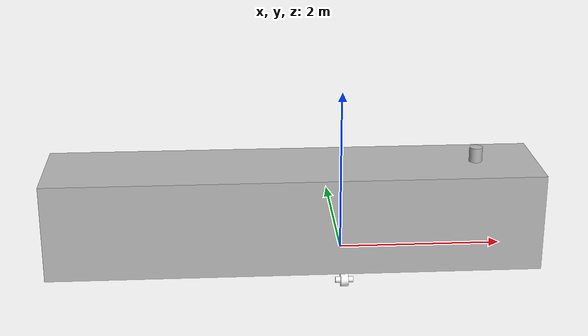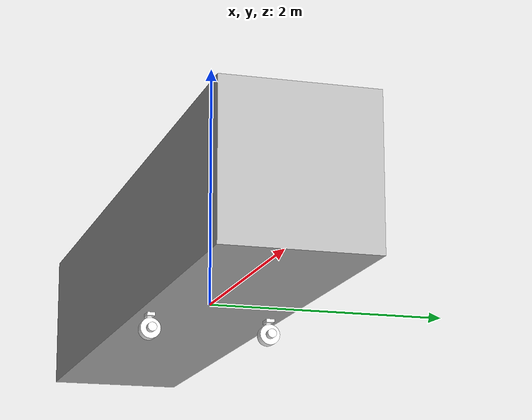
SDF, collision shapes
<?xml version="1.0"?>

<sdf version="1.6">
<!-- Basic model of the 16' WAM-V USV -->
<model name="wamv2">
  <static>false</static>
  <link name="base_link">
    <enable_wind>true</enable_wind>
    <inertial>
      <pose>0 0 -0.6 0 0 0</pose>
      <mass>50</mass>
      <inertia>
        <ixx>120.4</ixx>
        <ixy>0</ixy>
        <ixz>0</ixz>
        <iyy>240.25</iyy>
        <iyz>0</iyz>
        <izz>360.25</izz>
      </inertia>
    </inertial>

    <visual name="visual">
      <pose>-0.45 -10.35 -0.225 0 0 1.570796327</pose>
      <geometry>
        <mesh><uri>meshes/warship.dae</uri><scale>1.5 1.5 1.5</scale></mesh>
      </geometry>
    </visual>

    <collision name="collision">
      <pose>-0.6 0 0.5 0 0 0</pose>
      <geometry>
        <box>
          <size>6 1.2 1.2</size>
        </box>
      </geometry>
    </collision>
  </link>

  <!-- left engine and thruster -->
  <link name="left_housing_link">
    <inertial>
      <pose>0 0.495 -0.225 0 0 0</pose>
      <mass>0.5</mass>
      <inertia>
        <ixx>0.00121745</ixx>
        <ixy>0</ixy>
        <ixz>0</ixz>
        <iyy>0.001445</iyy>
        <iyz>0</iyz>
        <izz>0.00041245</izz>
      </inertia>
    </inertial>
    <visual name="left_housing_visual">
      <pose>0 0.495 -0.225 0 0 0</pose>
      <geometry>
        <mesh>
          <uri>meshes/housing.dae</uri>
        <scale>1.5 1.5 1.5</scale></mesh>
      </geometry>
      <material>
        <diffuse>1 1 1</diffuse>
        <specular>1 1 1</specular>
        <pbr>
          <metal>
            <albedo_map>materials/textures/Thruster_Albedo.png</albedo_map>
            <roughness_map>materials/textures/Thruster_Roughness.png</roughness_map>
          </metal>
        </pbr>
      </material>
    </visual>
    <visual name="left_mount_visual">
      <pose>0 0.495 -0.225 0 0 0</pose>
      <geometry>
        <mesh>
          <uri>meshes/mount.dae</uri>
        <scale>1.5 1.5 1.5</scale></mesh>
      </geometry>
      <material>
        <diffuse>1 1 1</diffuse>
        <specular>1 1 1</specular>
        <pbr>
          <metal>
            <albedo_map>materials/textures/Thruster_Albedo.png</albedo_map>
            <roughness_map>materials/textures/Thruster_Roughness.png</roughness_map>
          </metal>
        </pbr>
      </material>
    </visual>
    <collision name="Box011d">
      <pose>0 0.495 -0.0735735 0 0 0</pose>
      <geometry>
        <box>
          <size>0.12156795 0.06457785 0.1063875</size>
        </box>
      </geometry>
    </collision>
    <collision name="Cylinder264d">
      <pose>0 0.495 -0.1307901 0 0 0</pose>
      <geometry>
        <cylinder>
          <length>0.1884195</length>
          <radius>0.0220545</radius>
        </cylinder>
      </geometry>
    </collision>
    <collision name="Cylinder263d">
      <pose>0.0 0.495 -0.225 1.5708 0 -1.5708</pose>
      <geometry>
        <cylinder>
          <length>0.21564</length>
          <radius>0.0365538</radius>
        </cylinder>
      </geometry>
    </collision>
  </link>

  <link name="left_prop_link">
    <inertial>
      <pose>0 0.495 -0.225 0 0 0</pose>
      <mass>0.25</mass>
      <inertia>
        <ixx>0.00063375</ixx>
        <ixy>0</ixy>
        <ixz>0</ixz>
        <iyy>0.00063375</iyy>
        <iyz>0</iyz>
        <izz>0.0009075</izz>
      </inertia>
    </inertial>
    <visual name="left_prop_visual">
      <pose>0 0.495 -0.225 0 0 0</pose>
      <geometry>
        <mesh>
          <uri>meshes/prop.dae</uri>
        <scale>1.5 1.5 1.5</scale></mesh>
      </geometry>
      <material>
        <diffuse>1 1 1</diffuse>
        <specular>1 1 1</specular>
        <pbr>
          <metal>
            <albedo_map>materials/textures/Thruster_Albedo.png</albedo_map>
            <roughness_map>materials/textures/Thruster_Roughness.png</roughness_map>
          </metal>
        </pbr>
      </material>
    </visual>
    <collision name="Cylinder262d">
      <pose>0.0 0.495 -0.225 1.5708 0 -1.5708</pose>
      <geometry>
        <cylinder>
          <length>0.0912258</length>
          <radius>0.0830766</radius>
        </cylinder>
      </geometry>
    </collision>
  </link>

  <joint name="left_chasis_engine_joint" type="revolute">
    <axis>
      <xyz>0 0 1</xyz>
      <limit>
        <lower>0</lower>
        <upper>0</upper>
        <effort>10</effort>
        <velocity>10</velocity>
      </limit>
    </axis>
    <parent>base_link</parent>
    <child>left_housing_link</child>
  </joint>

  <joint name="left_engine_propeller_joint" type="revolute">
    <pose>0.0 0.495 -0.225 1.5708 0 0</pose>
    <axis>
      <xyz>1 0 0</xyz>
      <limit>
        <effort>100</effort>
        <velocity>100</velocity>
      </limit>
      <dynamics>
        <friction>0.05</friction>
        <damping>0.05</damping>
      </dynamics>
    </axis>
    <parent>left_housing_link</parent>
    <child>left_prop_link</child>
  </joint>

  <!-- right engine and thruster -->
  <link name="right_housing_link">
    <inertial>
      <pose>0.0 -0.495 -0.225 0 0 0</pose>
      <mass>0.5</mass>
      <inertia>
        <ixx>0.00121745</ixx>
        <ixy>0</ixy>
        <ixz>0</ixz>
        <iyy>0.001445</iyy>
        <iyz>0</iyz>
        <izz>0.00041245</izz>
      </inertia>
    </inertial>
    <visual name="right_housing_visual">
      <pose>0.0 -0.495 -0.225 0 0 0</pose>
      <geometry>
        <mesh>
          <uri>meshes/housing.dae</uri>
        <scale>1.5 1.5 1.5</scale></mesh>
      </geometry>
      <material>
        <diffuse>1 1 1</diffuse>
        <specular>1 1 1</specular>
        <pbr>
          <metal>
            <albedo_map>materials/textures/Thruster_Albedo.png</albedo_map>
            <roughness_map>materials/textures/Thruster_Roughness.png</roughness_map>
          </metal>
        </pbr>
      </material>
    </visual>
    <visual name="right_mount_visual">
      <pose>0.0 -0.495 -0.225 0 0 0</pose>
      <geometry>
        <mesh>
          <uri>meshes/mount.dae</uri>
        <scale>1.5 1.5 1.5</scale></mesh>
      </geometry>
      <material>
        <diffuse>1 1 1</diffuse>
        <specular>1 1 1</specular>
        <pbr>
          <metal>
            <albedo_map>materials/textures/Thruster_Albedo.png</albedo_map>
            <roughness_map>materials/textures/Thruster_Roughness.png</roughness_map>
          </metal>
        </pbr>
      </material>
    </visual>
    <collision name="Box011i">
      <pose>0.0 -0.495 -0.0735735 0 0 0</pose>
      <geometry>
        <box>
          <size>0.12156795 0.06457785 0.1063875</size>
        </box>
      </geometry>
    </collision>
    <collision name="Cylinder264i">
      <pose>0.0 -0.495 -0.1307901 0 0 0</pose>
      <geometry>
        <cylinder>
          <length>0.1884195</length>
          <radius>0.0220545</radius>
        </cylinder>
      </geometry>
    </collision>
    <collision name="Cylinder263i">
      <pose>0.0 -0.495 -0.225 1.5708 0 -1.5708</pose>
      <geometry>
        <cylinder>
          <length>0.21564</length>
          <radius>0.0365538</radius>
        </cylinder>
      </geometry>
    </collision>
  </link>

  <link name="right_prop_link">
    <inertial>
      <pose>0.0 -0.495 -0.225 0 0 0</pose>
      <mass>0.25</mass>
      <inertia>
        <ixx>0.00063375</ixx>
        <ixy>0</ixy>
        <ixz>0</ixz>
        <iyy>0.00063375</iyy>
        <iyz>0</iyz>
        <izz>0.0009075</izz>
      </inertia>
    </inertial>
    <visual name="right_prop_visual">
      <pose>0.0 -0.495 -0.225 0 0 0</pose>
      <geometry>
        <mesh>
          <uri>meshes/prop.dae</uri>
        <scale>1.5 1.5 1.5</scale></mesh>
      </geometry>
      <material>
        <diffuse>1 1 1</diffuse>
        <specular>1 1 1</specular>
        <pbr>
          <metal>
            <albedo_map>materials/textures/Thruster_Albedo.png</albedo_map>
            <roughness_map>materials/textures/Thruster_Roughness.png</roughness_map>
          </metal>
        </pbr>
      </material>
    </visual>
    <collision name="Cylinder262i">
      <pose>0.0 -0.495 -0.225 1.5708 0 -1.5708</pose>
      <geometry>
        <cylinder>
          <length>0.0912258</length>
          <radius>0.0830766</radius>
        </cylinder>
      </geometry>
    </collision>
  </link>

  <joint name="right_chasis_engine_joint" type="revolute">
    <axis>
      <xyz>0 0 1</xyz>
      <limit>
        <lower>0</lower>
        <upper>0</upper>
        <effort>10</effort>
        <velocity>10</velocity>
      </limit>
    </axis>
    <parent>base_link</parent>
    <child>right_housing_link</child>
  </joint>

  <joint name="right_engine_propeller_joint" type="revolute">
    <pose>0.0 -0.495 -0.225 1.5708 0 0</pose>
    <axis>
      <xyz>1 0 0</xyz>
      <limit>
        <effort>100</effort>
        <velocity>100</velocity>
      </limit>
      <dynamics>
        <friction>0.05</friction>
        <damping>0.05</damping>
      </dynamics>
    </axis>
    <parent>right_housing_link</parent>
    <child>right_prop_link</child>
  </joint>

  <!-- Uncomment to enable the left thruster -->
  <plugin filename="gz-sim-thruster-system" name="gz::sim::systems::Thruster">
    <joint_name>left_engine_propeller_joint</joint_name>
    <thrust_coefficient>1</thrust_coefficient>
    <fluid_density>1000</fluid_density>
    <max_thrust_cmd>2.5</max_thrust_cmd>
    <min_thrust_cmd>-2.5</min_thrust_cmd>
    <propeller_diameter>0.1</propeller_diameter>
    <velocity_control>true</velocity_control>
  </plugin>

  <plugin filename="gz-sim-joint-position-controller-system" name="gz::sim::systems::JointPositionController">
    <joint_name>left_chasis_engine_joint</joint_name>
    <use_velocity_commands>true</use_velocity_commands>
    <topic>/wamv/left/thruster/joint/cmd_pos</topic>
  </plugin>

  <!-- Uncomment to enable the right thruster -->
  <plugin filename="gz-sim-thruster-system" name="gz::sim::systems::Thruster">
    <joint_name>right_engine_propeller_joint</joint_name>
    <thrust_coefficient>1</thrust_coefficient>
    <fluid_density>1000</fluid_density>
    <max_thrust_cmd>2.5</max_thrust_cmd>
    <min_thrust_cmd>-2.5</min_thrust_cmd>
    <propeller_diameter>0.1</propeller_diameter>
    <velocity_control>true</velocity_control>
  </plugin>

  <plugin filename="gz-sim-joint-position-controller-system" name="gz::sim::systems::JointPositionController">
    <joint_name>right_chasis_engine_joint</joint_name>
    <use_velocity_commands>true</use_velocity_commands>
    <topic>/wamv/right/thruster/joint/cmd_pos</topic>
  </plugin>
  <!-- Uncomment to produce buoyancy on the left hull -->
  <plugin filename="libSurface.so" name="maritime::Surface">
    <link_name>base_link</link_name>
    <hull_length>1.15</hull_length>
    <hull_radius>0.15</hull_radius>
    <fluid_level>1.0</fluid_level>
    <points>
      <point>  2.5  0.75  0.1</point>
      <point>  0.0  0.75  0.1</point>
      <point> -2.5  0.75  0.1</point>
      <point>  1.25  0.75  0.1</point>
      <point> -1.25  0.75  0.1</point>
      <point>  0.75  0.75  0.1</point>
      <point> -0.75  0.75  0.1</point>
    </points>
    <wavefield>
      <topic>/maritime/wavefield/parameters</topic>
    </wavefield>
  </plugin>

  <plugin filename="libSurface.so" name="maritime::Surface">
    <link_name>base_link</link_name>
    <hull_length>1.15</hull_length>
    <hull_radius>0.15</hull_radius>
    <fluid_level>1.0</fluid_level>
    <points>
      <point>  2.5 -0.75  0.1</point>
      <point>  0.0 -0.75  0.1</point>
      <point> -2.5 -0.75  0.1</point>
      <point>  1.25  -0.75  0.1</point>
      <point> -1.25  -0.75  0.1</point>
      <point>  0.75  -0.75  0.1</point>
      <point> -0.75  -0.75  0.1</point>
    </points>
    <wavefield>
      <topic>/maritime/wavefield/parameters</topic>
    </wavefield>
  </plugin>
  <!-- Uncomment to enable hydrodynamics -->
  <plugin filename="gz-sim-hydrodynamics-system" name="gz::sim::systems::Hydrodynamics">
    <link_name>base_link</link_name>
      <xDotU>0.0</xDotU>
      <yDotV>0.0</yDotV>
      <nDotR>0.0</nDotR>
      <xU>-4.0</xU>
      <xAbsU>6.0</xAbsU>
      <yV>-4.0</yV>
      <yAbsV>4.0</yAbsV>
      <zW>-80.0</zW>     <!-- Strong vertical damping -->
      <kP>-50.0</kP>     <!-- Strong roll damping -->
      <mQ>-100.0</mQ>    <!-- Strong pitch damping -->
      <nR>-70.0</nR>     <!-- Strong yaw damping -->
      <nAbsR>32.0</nAbsR>
  </plugin>
  <plugin
		 filename="gz-sim-joint-controller-system"
		 name="gz::sim::systems::JointController">
		 <joint_name>j1</joint_name>
		 <use_force_commands>True</use_force_commands>
    <p_gain> 50.0</p_gain>
  </plugin>

  <plugin
		 filename="gz-sim-joint-controller-system"
		 name="gz::sim::systems::JointController">
		 <joint_name>j2</joint_name>
		 <use_force_commands>True</use_force_commands>
     <p_gain> 50.0</p_gain>
	</plugin>

  <link name="gr">
    <pose>1.65 0 0.15 0 0 0</pose>
    <collision name="collision">
    <geometry>
      <mesh>
        <uri>meshes/gr.dae</uri>
        <scale>0.08 0.08 0.08</scale>
      </mesh>
    </geometry>
  </collision>
  <visual name="visual">
    <geometry>
      <mesh>
        <uri>meshes/gr.dae</uri>
        <scale>0.08 0.08 0.08</scale>
      </mesh>
    </geometry>
  </visual>
  </link>
  <link name="gun">
    <pose>1.65 0 0.48 0 0 0</pose>
    <collision name="collision">
    <geometry>
      <mesh>
        <uri>meshes/gun.dae</uri>
        <scale>0.08 0.08 0.08</scale>
      </mesh>
    </geometry>
  </collision>
  <visual name="visual">
    <geometry>
      <mesh>
        <uri>meshes/gun.dae</uri>
        <scale>0.08 0.08 0.08</scale>
      </mesh>
    </geometry>
  </visual>
  </link>

  <joint name="j2" type="revolute">
    <parent>base_link</parent>
    <child>gr</child>
    <axis>
      <xyz>0 0 1</xyz>
      <limit>
      <effort>10</effort>
      <velocity>0.3</velocity>
      </limit>
    </axis>
  </joint>
  <joint name="j1" type="revolute">
    <pose>0 0 0 0 0 0</pose>
    <parent>gr</parent>
    <child>gun</child>
    <axis>
      <xyz>0 1 0</xyz>
      <limit>
      <lower>-1.57</lower>
      <upper>1.57 </upper>
      <effort>10</effort>
      <velocity>0.3</velocity>
      </limit>
    </axis>
  </joint>

</model>

</sdf>
